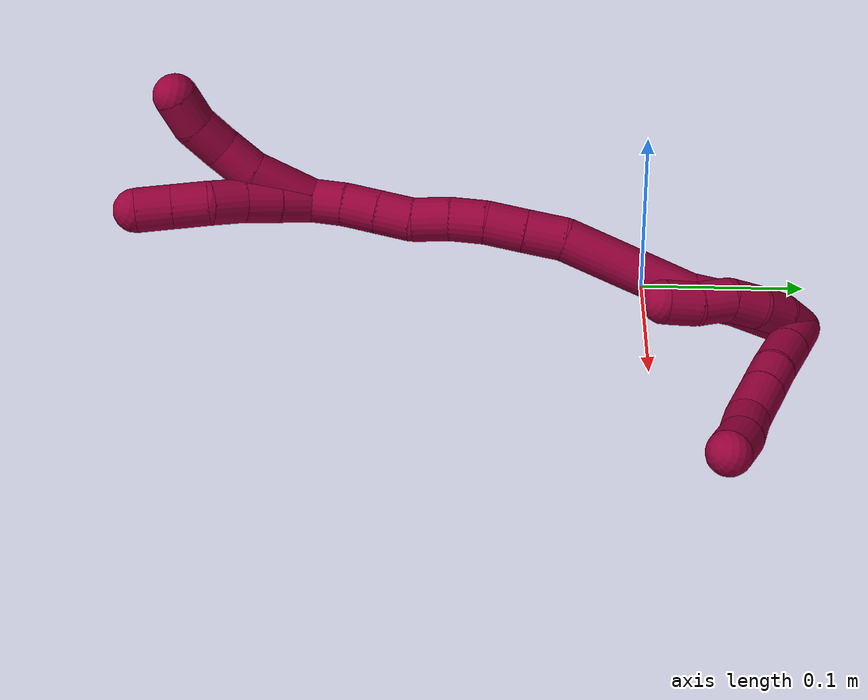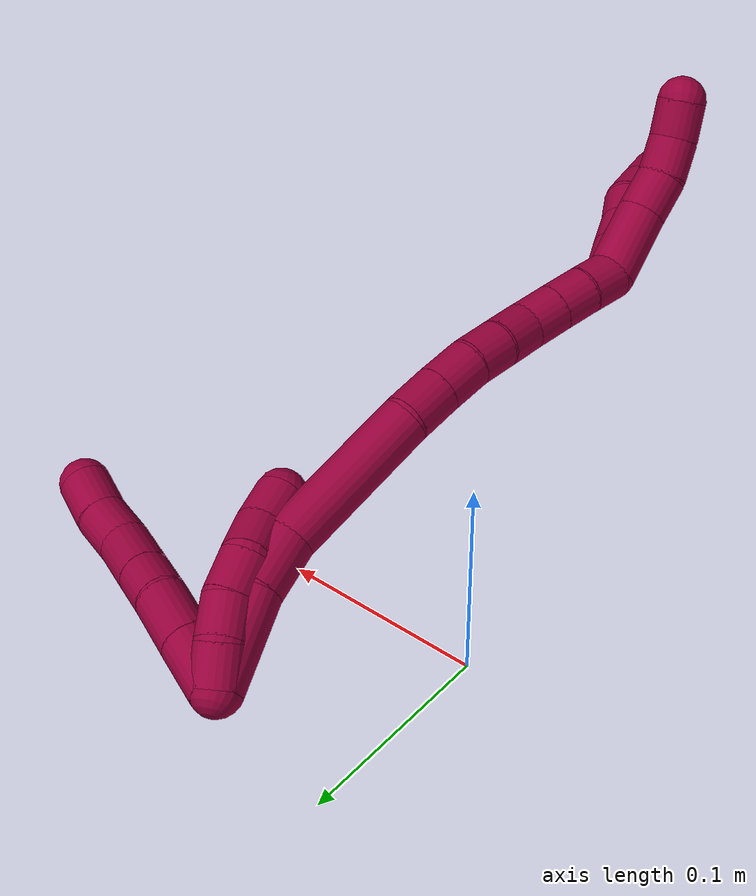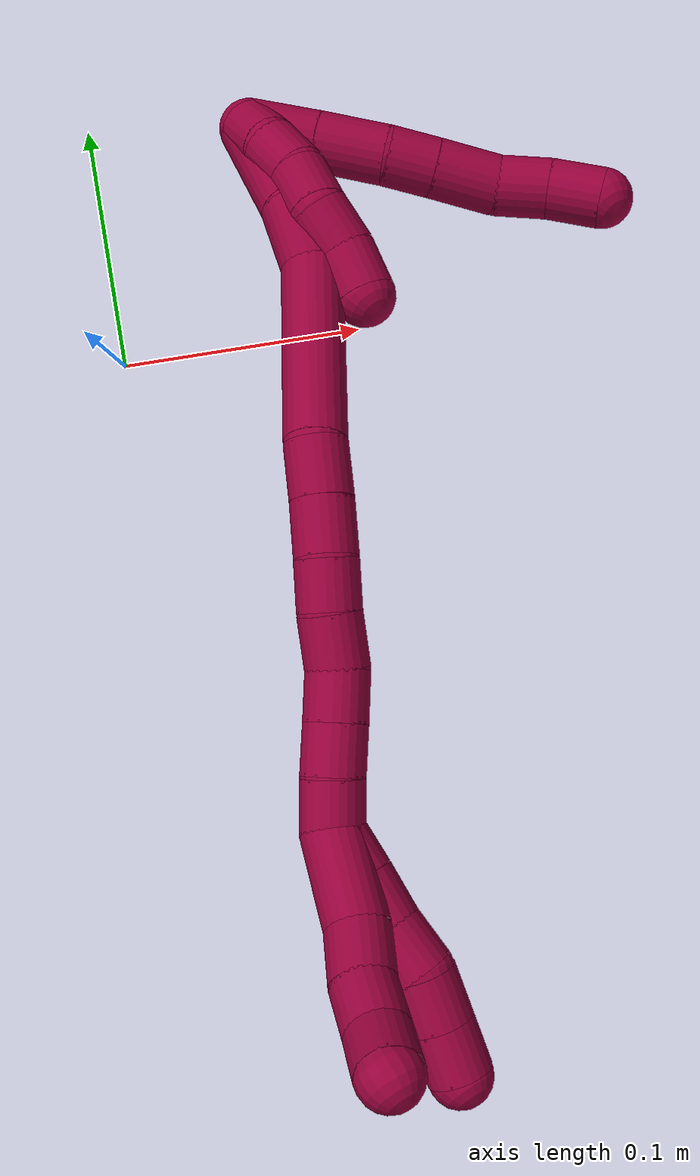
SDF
<sdf version="1.7">
 <world name="default">
  <model name="8">
   <static>0</static>
   <link name="8">
    <collision name="collision-cylinder-e_1_2_8">
     <pose>0.010166 0.003099 0.010073 -0.298489 0.767404 -0.121257</pose>
     <geometry><cylinder><radius>0.0125</radius><length>0.029287</length></cylinder></geometry>
     <surface>
      <friction><ode><mu>1.16</mu><mu2>1.16</mu2><slip1>0</slip1><slip2>0</slip2></ode></friction>
      <contact><ode><kp>1e+06</kp><kd>1</kd><max_vel>0</max_vel><min_depth>0.001</min_depth></ode></contact>
     </surface>
    </collision>
    <visual name="visual-cylinder-e_1_2_8">
     <pose>0.010166 0.003099 0.010073 -0.298489 0.767404 -0.121257</pose>
     <geometry><cylinder><radius>0.0125</radius><length>0.029287</length></cylinder></geometry>
     <material><ambient>0.584314 0 0.227451 1</ambient></material>
    </visual>
    <collision name="collision-cylinder-e_2_8_9">
     <pose>0.03052 0.008907 0.0302 -0.263123 0.774491 -0.10783</pose>
     <geometry><cylinder><radius>0.0125</radius><length>0.029134</length></cylinder></geometry>
     <surface>
      <friction><ode><mu>1.16</mu><mu2>1.16</mu2><slip1>0</slip1><slip2>0</slip2></ode></friction>
      <contact><ode><kp>1e+06</kp><kd>1</kd><max_vel>0</max_vel><min_depth>0.001</min_depth></ode></contact>
     </surface>
    </collision>
    <visual name="visual-cylinder-e_2_8_9">
     <pose>0.03052 0.008907 0.0302 -0.263123 0.774491 -0.10783</pose>
     <geometry><cylinder><radius>0.0125</radius><length>0.029134</length></cylinder></geometry>
     <material><ambient>0.584314 0 0.227451 1</ambient></material>
    </visual>
    <collision name="collision-cylinder-e_3_9_10">
     <pose>0.048512 0.012245 0.046596 -0.099097 0.886018 -0.047048</pose>
     <geometry><cylinder><radius>0.0125</radius><length>0.020152</length></cylinder></geometry>
     <surface>
      <friction><ode><mu>1.16</mu><mu2>1.16</mu2><slip1>0</slip1><slip2>0</slip2></ode></friction>
      <contact><ode><kp>1e+06</kp><kd>1</kd><max_vel>0</max_vel><min_depth>0.001</min_depth></ode></contact>
     </surface>
    </collision>
    <visual name="visual-cylinder-e_3_9_10">
     <pose>0.048512 0.012245 0.046596 -0.099097 0.886018 -0.047048</pose>
     <geometry><cylinder><radius>0.0125</radius><length>0.020152</length></cylinder></geometry>
     <material><ambient>0.584314 0 0.227451 1</ambient></material>
    </visual>
    <collision name="collision-cylinder-e_4_10_11">
     <pose>0.066922 0.013454 0.061465 -0.067652 0.892398 -0.032373</pose>
     <geometry><cylinder><radius>0.0125</radius><length>0.027241</length></cylinder></geometry>
     <surface>
      <friction><ode><mu>1.16</mu><mu2>1.16</mu2><slip1>0</slip1><slip2>0</slip2></ode></friction>
      <contact><ode><kp>1e+06</kp><kd>1</kd><max_vel>0</max_vel><min_depth>0.001</min_depth></ode></contact>
     </surface>
    </collision>
    <visual name="visual-cylinder-e_4_10_11">
     <pose>0.066922 0.013454 0.061465 -0.067652 0.892398 -0.032373</pose>
     <geometry><cylinder><radius>0.0125</radius><length>0.027241</length></cylinder></geometry>
     <material><ambient>0.584314 0 0.227451 1</ambient></material>
    </visual>
    <collision name="collision-cylinder-e_5_11_12">
     <pose>0.085537 0.017251 0.076722 -0.446267 0.821025 -0.196884</pose>
     <geometry><cylinder><radius>0.0125</radius><length>0.021892</length></cylinder></geometry>
     <surface>
      <friction><ode><mu>1.16</mu><mu2>1.16</mu2><slip1>0</slip1><slip2>0</slip2></ode></friction>
      <contact><ode><kp>1e+06</kp><kd>1</kd><max_vel>0</max_vel><min_depth>0.001</min_depth></ode></contact>
     </surface>
    </collision>
    <visual name="visual-cylinder-e_5_11_12">
     <pose>0.085537 0.017251 0.076722 -0.446267 0.821025 -0.196884</pose>
     <geometry><cylinder><radius>0.0125</radius><length>0.021892</length></cylinder></geometry>
     <material><ambient>0.584314 0 0.227451 1</ambient></material>
    </visual>
    <collision name="collision-cylinder-e_6_12_6">
     <pose>0.100495 0.023462 0.091639 -0.350289 0.672847 -0.123613</pose>
     <geometry><cylinder><radius>0.0125</radius><length>0.022294</length></cylinder></geometry>
     <surface>
      <friction><ode><mu>1.16</mu><mu2>1.16</mu2><slip1>0</slip1><slip2>0</slip2></ode></friction>
      <contact><ode><kp>1e+06</kp><kd>1</kd><max_vel>0</max_vel><min_depth>0.001</min_depth></ode></contact>
     </surface>
    </collision>
    <visual name="visual-cylinder-e_6_12_6">
     <pose>0.100495 0.023462 0.091639 -0.350289 0.672847 -0.123613</pose>
     <geometry><cylinder><radius>0.0125</radius><length>0.022294</length></cylinder></geometry>
     <material><ambient>0.584314 0 0.227451 1</ambient></material>
    </visual>
    <collision name="collision-cylinder-e_1_2_13">
     <pose>-0.001021 0.002817 0.009541 -0.287116 -0.10229 0.014799</pose>
     <geometry><cylinder><radius>0.0125</radius><length>0.02</length></cylinder></geometry>
     <surface>
      <friction><ode><mu>1.16</mu><mu2>1.16</mu2><slip1>0</slip1><slip2>0</slip2></ode></friction>
      <contact><ode><kp>1e+06</kp><kd>1</kd><max_vel>0</max_vel><min_depth>0.001</min_depth></ode></contact>
     </surface>
    </collision>
    <visual name="visual-cylinder-e_1_2_13">
     <pose>-0.001021 0.002817 0.009541 -0.287116 -0.10229 0.014799</pose>
     <geometry><cylinder><radius>0.0125</radius><length>0.02</length></cylinder></geometry>
     <material><ambient>0.584314 0 0.227451 1</ambient></material>
    </visual>
    <collision name="collision-cylinder-e_2_13_14">
     <pose>-0.001607 0.006457 0.029038 -0.082498 0.043563 -0.001798</pose>
     <geometry><cylinder><radius>0.0125</radius><length>0.02</length></cylinder></geometry>
     <surface>
      <friction><ode><mu>1.16</mu><mu2>1.16</mu2><slip1>0</slip1><slip2>0</slip2></ode></friction>
      <contact><ode><kp>1e+06</kp><kd>1</kd><max_vel>0</max_vel><min_depth>0.001</min_depth></ode></contact>
     </surface>
    </collision>
    <visual name="visual-cylinder-e_2_13_14">
     <pose>-0.001607 0.006457 0.029038 -0.082498 0.043563 -0.001798</pose>
     <geometry><cylinder><radius>0.0125</radius><length>0.02</length></cylinder></geometry>
     <material><ambient>0.584314 0 0.227451 1</ambient></material>
    </visual>
    <collision name="collision-cylinder-e_3_14_15">
     <pose>-0.001828 0.006019 0.048892 0.126795 -0.065727 -0.004174</pose>
     <geometry><cylinder><radius>0.0125</radius><length>0.02</length></cylinder></geometry>
     <surface>
      <friction><ode><mu>1.16</mu><mu2>1.16</mu2><slip1>0</slip1><slip2>0</slip2></ode></friction>
      <contact><ode><kp>1e+06</kp><kd>1</kd><max_vel>0</max_vel><min_depth>0.001</min_depth></ode></contact>
     </surface>
    </collision>
    <visual name="visual-cylinder-e_3_14_15">
     <pose>-0.001828 0.006019 0.048892 0.126795 -0.065727 -0.004174</pose>
     <geometry><cylinder><radius>0.0125</radius><length>0.02</length></cylinder></geometry>
     <material><ambient>0.584314 0 0.227451 1</ambient></material>
    </visual>
    <collision name="collision-cylinder-e_4_15_16">
     <pose>-0.000485 0.001434 0.068008 0.345996 0.201297 0.035291</pose>
     <geometry><cylinder><radius>0.0125</radius><length>0.02</length></cylinder></geometry>
     <surface>
      <friction><ode><mu>1.16</mu><mu2>1.16</mu2><slip1>0</slip1><slip2>0</slip2></ode></friction>
      <contact><ode><kp>1e+06</kp><kd>1</kd><max_vel>0</max_vel><min_depth>0.001</min_depth></ode></contact>
     </surface>
    </collision>
    <visual name="visual-cylinder-e_4_15_16">
     <pose>-0.000485 0.001434 0.068008 0.345996 0.201297 0.035291</pose>
     <geometry><cylinder><radius>0.0125</radius><length>0.02</length></cylinder></geometry>
     <material><ambient>0.584314 0 0.227451 1</ambient></material>
    </visual>
    <collision name="collision-cylinder-e_5_16_5">
     <pose>0.001514 -0.005095 0.086698 0.326355 2.6e-05 4e-06</pose>
     <geometry><cylinder><radius>0.0125</radius><length>0.02</length></cylinder></geometry>
     <surface>
      <friction><ode><mu>1.16</mu><mu2>1.16</mu2><slip1>0</slip1><slip2>0</slip2></ode></friction>
      <contact><ode><kp>1e+06</kp><kd>1</kd><max_vel>0</max_vel><min_depth>0.001</min_depth></ode></contact>
     </surface>
    </collision>
    <visual name="visual-cylinder-e_5_16_5">
     <pose>0.001514 -0.005095 0.086698 0.326355 2.6e-05 4e-06</pose>
     <geometry><cylinder><radius>0.0125</radius><length>0.02</length></cylinder></geometry>
     <material><ambient>0.584314 0 0.227451 1</ambient></material>
    </visual>
    <collision name="collision-cylinder-e_1_2_17">
     <pose>-0.002919 -0.001182 0.023207 0.050875 -0.124949 -0.003183</pose>
     <geometry><cylinder><radius>0.0125</radius><length>0.04684</length></cylinder></geometry>
     <surface>
      <friction><ode><mu>1.16</mu><mu2>1.16</mu2><slip1>0</slip1><slip2>0</slip2></ode></friction>
      <contact><ode><kp>1e+06</kp><kd>1</kd><max_vel>0</max_vel><min_depth>0.001</min_depth></ode></contact>
     </surface>
    </collision>
    <visual name="visual-cylinder-e_1_2_17">
     <pose>-0.002919 -0.001182 0.023207 0.050875 -0.124949 -0.003183</pose>
     <geometry><cylinder><radius>0.0125</radius><length>0.04684</length></cylinder></geometry>
     <material><ambient>0.584314 0 0.227451 1</ambient></material>
    </visual>
    <collision name="collision-cylinder-e_2_17_18">
     <pose>-0.007723 -0.00627 0.060375 0.272864 -0.129311 -0.017777</pose>
     <geometry><cylinder><radius>0.0125</radius><length>0.029237</length></cylinder></geometry>
     <surface>
      <friction><ode><mu>1.16</mu><mu2>1.16</mu2><slip1>0</slip1><slip2>0</slip2></ode></friction>
      <contact><ode><kp>1e+06</kp><kd>1</kd><max_vel>0</max_vel><min_depth>0.001</min_depth></ode></contact>
     </surface>
    </collision>
    <visual name="visual-cylinder-e_2_17_18">
     <pose>-0.007723 -0.00627 0.060375 0.272864 -0.129311 -0.017777</pose>
     <geometry><cylinder><radius>0.0125</radius><length>0.029237</length></cylinder></geometry>
     <material><ambient>0.584314 0 0.227451 1</ambient></material>
    </visual>
    <collision name="collision-cylinder-e_3_18_19">
     <pose>-0.02513 -0.021868 0.107618 0.337794 -0.414526 -0.071685</pose>
     <geometry><cylinder><radius>0.0125</radius><length>0.077081</length></cylinder></geometry>
     <surface>
      <friction><ode><mu>1.16</mu><mu2>1.16</mu2><slip1>0</slip1><slip2>0</slip2></ode></friction>
      <contact><ode><kp>1e+06</kp><kd>1</kd><max_vel>0</max_vel><min_depth>0.001</min_depth></ode></contact>
     </surface>
    </collision>
    <visual name="visual-cylinder-e_3_18_19">
     <pose>-0.02513 -0.021868 0.107618 0.337794 -0.414526 -0.071685</pose>
     <geometry><cylinder><radius>0.0125</radius><length>0.077081</length></cylinder></geometry>
     <material><ambient>0.584314 0 0.227451 1</ambient></material>
    </visual>
    <collision name="collision-cylinder-e_4_19_20">
     <pose>-0.043489 -0.038683 0.150728 0.480669 -0.250569 -0.061711</pose>
     <geometry><cylinder><radius>0.0125</radius><length>0.022881</length></cylinder></geometry>
     <surface>
      <friction><ode><mu>1.16</mu><mu2>1.16</mu2><slip1>0</slip1><slip2>0</slip2></ode></friction>
      <contact><ode><kp>1e+06</kp><kd>1</kd><max_vel>0</max_vel><min_depth>0.001</min_depth></ode></contact>
     </surface>
    </collision>
    <visual name="visual-cylinder-e_4_19_20">
     <pose>-0.043489 -0.038683 0.150728 0.480669 -0.250569 -0.061711</pose>
     <geometry><cylinder><radius>0.0125</radius><length>0.022881</length></cylinder></geometry>
     <material><ambient>0.584314 0 0.227451 1</ambient></material>
    </visual>
    <collision name="collision-cylinder-e_5_20_21">
     <pose>-0.049365 -0.049004 0.169993 0.503283 -0.274911 -0.071096</pose>
     <geometry><cylinder><radius>0.0125</radius><length>0.022389</length></cylinder></geometry>
     <surface>
      <friction><ode><mu>1.16</mu><mu2>1.16</mu2><slip1>0</slip1><slip2>0</slip2></ode></friction>
      <contact><ode><kp>1e+06</kp><kd>1</kd><max_vel>0</max_vel><min_depth>0.001</min_depth></ode></contact>
     </surface>
    </collision>
    <visual name="visual-cylinder-e_5_20_21">
     <pose>-0.049365 -0.049004 0.169993 0.503283 -0.274911 -0.071096</pose>
     <geometry><cylinder><radius>0.0125</radius><length>0.022389</length></cylinder></geometry>
     <material><ambient>0.584314 0 0.227451 1</ambient></material>
    </visual>
    <collision name="collision-cylinder-e_6_21_22">
     <pose>-0.054587 -0.060065 0.187343 0.637933 -0.218162 -0.072302</pose>
     <geometry><cylinder><radius>0.0125</radius><length>0.020176</length></cylinder></geometry>
     <surface>
      <friction><ode><mu>1.16</mu><mu2>1.16</mu2><slip1>0</slip1><slip2>0</slip2></ode></friction>
      <contact><ode><kp>1e+06</kp><kd>1</kd><max_vel>0</max_vel><min_depth>0.001</min_depth></ode></contact>
     </surface>
    </collision>
    <visual name="visual-cylinder-e_6_21_22">
     <pose>-0.054587 -0.060065 0.187343 0.637933 -0.218162 -0.072302</pose>
     <geometry><cylinder><radius>0.0125</radius><length>0.020176</length></cylinder></geometry>
     <material><ambient>0.584314 0 0.227451 1</ambient></material>
    </visual>
    <collision name="collision-cylinder-e_7_22_23">
     <pose>-0.057832 -0.07255 0.203537 0.674261 -0.099842 -0.035021</pose>
     <geometry><cylinder><radius>0.0125</radius><length>0.021311</length></cylinder></geometry>
     <surface>
      <friction><ode><mu>1.16</mu><mu2>1.16</mu2><slip1>0</slip1><slip2>0</slip2></ode></friction>
      <contact><ode><kp>1e+06</kp><kd>1</kd><max_vel>0</max_vel><min_depth>0.001</min_depth></ode></contact>
     </surface>
    </collision>
    <visual name="visual-cylinder-e_7_22_23">
     <pose>-0.057832 -0.07255 0.203537 0.674261 -0.099842 -0.035021</pose>
     <geometry><cylinder><radius>0.0125</radius><length>0.021311</length></cylinder></geometry>
     <material><ambient>0.584314 0 0.227451 1</ambient></material>
    </visual>
    <collision name="collision-cylinder-e_8_23_24">
     <pose>-0.062309 -0.084645 0.219515 0.618475 -0.346917 -0.111844</pose>
     <geometry><cylinder><radius>0.0125</radius><length>0.020085</length></cylinder></geometry>
     <surface>
      <friction><ode><mu>1.16</mu><mu2>1.16</mu2><slip1>0</slip1><slip2>0</slip2></ode></friction>
      <contact><ode><kp>1e+06</kp><kd>1</kd><max_vel>0</max_vel><min_depth>0.001</min_depth></ode></contact>
     </surface>
    </collision>
    <visual name="visual-cylinder-e_8_23_24">
     <pose>-0.062309 -0.084645 0.219515 0.618475 -0.346917 -0.111844</pose>
     <geometry><cylinder><radius>0.0125</radius><length>0.020085</length></cylinder></geometry>
     <material><ambient>0.584314 0 0.227451 1</ambient></material>
    </visual>
    <collision name="collision-cylinder-e_9_24_25">
     <pose>-0.069202 -0.095624 0.234801 0.627237 -0.355257 -0.116314</pose>
     <geometry><cylinder><radius>0.0125</radius><length>0.02</length></cylinder></geometry>
     <surface>
      <friction><ode><mu>1.16</mu><mu2>1.16</mu2><slip1>0</slip1><slip2>0</slip2></ode></friction>
      <contact><ode><kp>1e+06</kp><kd>1</kd><max_vel>0</max_vel><min_depth>0.001</min_depth></ode></contact>
     </surface>
    </collision>
    <visual name="visual-cylinder-e_9_24_25">
     <pose>-0.069202 -0.095624 0.234801 0.627237 -0.355257 -0.116314</pose>
     <geometry><cylinder><radius>0.0125</radius><length>0.02</length></cylinder></geometry>
     <material><ambient>0.584314 0 0.227451 1</ambient></material>
    </visual>
    <collision name="collision-cylinder-e_10_25_1">
     <pose>-0.075344 -0.107142 0.249922 0.674067 -0.269627 -0.094983</pose>
     <geometry><cylinder><radius>0.0125</radius><length>0.02</length></cylinder></geometry>
     <surface>
      <friction><ode><mu>1.16</mu><mu2>1.16</mu2><slip1>0</slip1><slip2>0</slip2></ode></friction>
      <contact><ode><kp>1e+06</kp><kd>1</kd><max_vel>0</max_vel><min_depth>0.001</min_depth></ode></contact>
     </surface>
    </collision>
    <visual name="visual-cylinder-e_10_25_1">
     <pose>-0.075344 -0.107142 0.249922 0.674067 -0.269627 -0.094983</pose>
     <geometry><cylinder><radius>0.0125</radius><length>0.02</length></cylinder></geometry>
     <material><ambient>0.584314 0 0.227451 1</ambient></material>
    </visual>
    <collision name="collision-cylinder-e_1_1_26">
     <pose>-0.083082 -0.114859 0.27564 0.093195 -0.270986 -0.012714</pose>
     <geometry><cylinder><radius>0.0125</radius><length>0.037916</length></cylinder></geometry>
     <surface>
      <friction><ode><mu>1.16</mu><mu2>1.16</mu2><slip1>0</slip1><slip2>0</slip2></ode></friction>
      <contact><ode><kp>1e+06</kp><kd>1</kd><max_vel>0</max_vel><min_depth>0.001</min_depth></ode></contact>
     </surface>
    </collision>
    <visual name="visual-cylinder-e_1_1_26">
     <pose>-0.083082 -0.114859 0.27564 0.093195 -0.270986 -0.012714</pose>
     <geometry><cylinder><radius>0.0125</radius><length>0.037916</length></cylinder></geometry>
     <material><ambient>0.584314 0 0.227451 1</ambient></material>
    </visual>
    <collision name="collision-cylinder-e_2_26_27">
     <pose>-0.093105 -0.116117 0.303442 -0.045888 -0.474792 0.011105</pose>
     <geometry><cylinder><radius>0.0125</radius><length>0.021645</length></cylinder></geometry>
     <surface>
      <friction><ode><mu>1.16</mu><mu2>1.16</mu2><slip1>0</slip1><slip2>0</slip2></ode></friction>
      <contact><ode><kp>1e+06</kp><kd>1</kd><max_vel>0</max_vel><min_depth>0.001</min_depth></ode></contact>
     </surface>
    </collision>
    <visual name="visual-cylinder-e_2_26_27">
     <pose>-0.093105 -0.116117 0.303442 -0.045888 -0.474792 0.011105</pose>
     <geometry><cylinder><radius>0.0125</radius><length>0.021645</length></cylinder></geometry>
     <material><ambient>0.584314 0 0.227451 1</ambient></material>
    </visual>
    <collision name="collision-cylinder-e_3_27_28">
     <pose>-0.101542 -0.113494 0.322404 -0.229242 -0.348731 0.040554</pose>
     <geometry><cylinder><radius>0.0125</radius><length>0.020424</length></cylinder></geometry>
     <surface>
      <friction><ode><mu>1.16</mu><mu2>1.16</mu2><slip1>0</slip1><slip2>0</slip2></ode></friction>
      <contact><ode><kp>1e+06</kp><kd>1</kd><max_vel>0</max_vel><min_depth>0.001</min_depth></ode></contact>
     </surface>
    </collision>
    <visual name="visual-cylinder-e_3_27_28">
     <pose>-0.101542 -0.113494 0.322404 -0.229242 -0.348731 0.040554</pose>
     <geometry><cylinder><radius>0.0125</radius><length>0.020424</length></cylinder></geometry>
     <material><ambient>0.584314 0 0.227451 1</ambient></material>
    </visual>
    <collision name="collision-cylinder-e_4_28_4">
     <pose>-0.109302 -0.106825 0.339609 -0.518938 -0.440887 0.118828</pose>
     <geometry><cylinder><radius>0.0125</radius><length>0.020015</length></cylinder></geometry>
     <surface>
      <friction><ode><mu>1.16</mu><mu2>1.16</mu2><slip1>0</slip1><slip2>0</slip2></ode></friction>
      <contact><ode><kp>1e+06</kp><kd>1</kd><max_vel>0</max_vel><min_depth>0.001</min_depth></ode></contact>
     </surface>
    </collision>
    <visual name="visual-cylinder-e_4_28_4">
     <pose>-0.109302 -0.106825 0.339609 -0.518938 -0.440887 0.118828</pose>
     <geometry><cylinder><radius>0.0125</radius><length>0.020015</length></cylinder></geometry>
     <material><ambient>0.584314 0 0.227451 1</ambient></material>
    </visual>
    <collision name="collision-cylinder-e_1_1_29">
     <pose>-0.076559 -0.115769 0.266997 0.266997 0.14536 0.019555</pose>
     <geometry><cylinder><radius>0.0125</radius><length>0.02</length></cylinder></geometry>
     <surface>
      <friction><ode><mu>1.16</mu><mu2>1.16</mu2><slip1>0</slip1><slip2>0</slip2></ode></friction>
      <contact><ode><kp>1e+06</kp><kd>1</kd><max_vel>0</max_vel><min_depth>0.001</min_depth></ode></contact>
     </surface>
    </collision>
    <visual name="visual-cylinder-e_1_1_29">
     <pose>-0.076559 -0.115769 0.266997 0.266997 0.14536 0.019555</pose>
     <geometry><cylinder><radius>0.0125</radius><length>0.02</length></cylinder></geometry>
     <material><ambient>0.584314 0 0.227451 1</ambient></material>
    </visual>
    <collision name="collision-cylinder-e_2_29_30">
     <pose>-0.073926 -0.121123 0.286084 0.279957 0.118683 0.016742</pose>
     <geometry><cylinder><radius>0.0125</radius><length>0.02</length></cylinder></geometry>
     <surface>
      <friction><ode><mu>1.16</mu><mu2>1.16</mu2><slip1>0</slip1><slip2>0</slip2></ode></friction>
      <contact><ode><kp>1e+06</kp><kd>1</kd><max_vel>0</max_vel><min_depth>0.001</min_depth></ode></contact>
     </surface>
    </collision>
    <visual name="visual-cylinder-e_2_29_30">
     <pose>-0.073926 -0.121123 0.286084 0.279957 0.118683 0.016742</pose>
     <geometry><cylinder><radius>0.0125</radius><length>0.02</length></cylinder></geometry>
     <material><ambient>0.584314 0 0.227451 1</ambient></material>
    </visual>
    <collision name="collision-cylinder-e_3_30_31">
     <pose>-0.070489 -0.126188 0.305089 0.240561 0.227335 0.027594</pose>
     <geometry><cylinder><radius>0.0125</radius><length>0.02</length></cylinder></geometry>
     <surface>
      <friction><ode><mu>1.16</mu><mu2>1.16</mu2><slip1>0</slip1><slip2>0</slip2></ode></friction>
      <contact><ode><kp>1e+06</kp><kd>1</kd><max_vel>0</max_vel><min_depth>0.001</min_depth></ode></contact>
     </surface>
    </collision>
    <visual name="visual-cylinder-e_3_30_31">
     <pose>-0.070489 -0.126188 0.305089 0.240561 0.227335 0.027594</pose>
     <geometry><cylinder><radius>0.0125</radius><length>0.02</length></cylinder></geometry>
     <material><ambient>0.584314 0 0.227451 1</ambient></material>
    </visual>
    <collision name="collision-cylinder-e_4_31_32">
     <pose>-0.06754 -0.133692 0.323075 0.546296 0.069556 0.019493</pose>
     <geometry><cylinder><radius>0.0125</radius><length>0.02</length></cylinder></geometry>
     <surface>
      <friction><ode><mu>1.16</mu><mu2>1.16</mu2><slip1>0</slip1><slip2>0</slip2></ode></friction>
      <contact><ode><kp>1e+06</kp><kd>1</kd><max_vel>0</max_vel><min_depth>0.001</min_depth></ode></contact>
     </surface>
    </collision>
    <visual name="visual-cylinder-e_4_31_32">
     <pose>-0.06754 -0.133692 0.323075 0.546296 0.069556 0.019493</pose>
     <geometry><cylinder><radius>0.0125</radius><length>0.02</length></cylinder></geometry>
     <material><ambient>0.584314 0 0.227451 1</ambient></material>
    </visual>
    <collision name="collision-cylinder-e_5_32_3">
     <pose>-0.066161 -0.144065 0.340119 0.547086 0.068451 0.019213</pose>
     <geometry><cylinder><radius>0.0125</radius><length>0.02</length></cylinder></geometry>
     <surface>
      <friction><ode><mu>1.16</mu><mu2>1.16</mu2><slip1>0</slip1><slip2>0</slip2></ode></friction>
      <contact><ode><kp>1e+06</kp><kd>1</kd><max_vel>0</max_vel><min_depth>0.001</min_depth></ode></contact>
     </surface>
    </collision>
    <visual name="visual-cylinder-e_5_32_3">
     <pose>-0.066161 -0.144065 0.340119 0.547086 0.068451 0.019213</pose>
     <geometry><cylinder><radius>0.0125</radius><length>0.02</length></cylinder></geometry>
     <material><ambient>0.584314 0 0.227451 1</ambient></material>
    </visual>
    <collision name="collision-sphere-3">
     <pose>-0.065477 -0.149255 0.34864 0 -0 0</pose>
     <geometry><sphere><radius>0.0125</radius></sphere></geometry>
     <surface>
      <friction><ode><mu>1.16</mu><mu2>1.16</mu2><slip1>0</slip1><slip2>0</slip2></ode></friction>
      <contact><ode><kp>1e+06</kp><kd>1</kd><max_vel>0</max_vel><min_depth>0.001</min_depth></ode></contact>
     </surface>
    </collision>
    <visual name="visual-sphere-3">
     <pose>-0.065477 -0.149255 0.34864 0 -0 0</pose>
     <geometry><sphere><radius>0.0125</radius></sphere></geometry>
     <material><ambient>0.584314 0 0.227451 1</ambient></material>
    </visual>
    <collision name="collision-sphere-32">
     <pose>-0.066845 -0.138875 0.331599 0 -0 0</pose>
     <geometry><sphere><radius>0.0125</radius></sphere></geometry>
     <surface>
      <friction><ode><mu>1.16</mu><mu2>1.16</mu2><slip1>0</slip1><slip2>0</slip2></ode></friction>
      <contact><ode><kp>1e+06</kp><kd>1</kd><max_vel>0</max_vel><min_depth>0.001</min_depth></ode></contact>
     </surface>
    </collision>
    <visual name="visual-sphere-32">
     <pose>-0.066845 -0.138875 0.331599 0 -0 0</pose>
     <geometry><sphere><radius>0.0125</radius></sphere></geometry>
     <material><ambient>0.584314 0 0.227451 1</ambient></material>
    </visual>
    <collision name="collision-sphere-31">
     <pose>-0.068235 -0.12851 0.314551 0 -0 0</pose>
     <geometry><sphere><radius>0.0125</radius></sphere></geometry>
     <surface>
      <friction><ode><mu>1.16</mu><mu2>1.16</mu2><slip1>0</slip1><slip2>0</slip2></ode></friction>
      <contact><ode><kp>1e+06</kp><kd>1</kd><max_vel>0</max_vel><min_depth>0.001</min_depth></ode></contact>
     </surface>
    </collision>
    <visual name="visual-sphere-31">
     <pose>-0.068235 -0.12851 0.314551 0 -0 0</pose>
     <geometry><sphere><radius>0.0125</radius></sphere></geometry>
     <material><ambient>0.584314 0 0.227451 1</ambient></material>
    </visual>
    <collision name="collision-sphere-30">
     <pose>-0.072742 -0.123867 0.295627 0 -0 0</pose>
     <geometry><sphere><radius>0.0125</radius></sphere></geometry>
     <surface>
      <friction><ode><mu>1.16</mu><mu2>1.16</mu2><slip1>0</slip1><slip2>0</slip2></ode></friction>
      <contact><ode><kp>1e+06</kp><kd>1</kd><max_vel>0</max_vel><min_depth>0.001</min_depth></ode></contact>
     </surface>
    </collision>
    <visual name="visual-sphere-30">
     <pose>-0.072742 -0.123867 0.295627 0 -0 0</pose>
     <geometry><sphere><radius>0.0125</radius></sphere></geometry>
     <material><ambient>0.584314 0 0.227451 1</ambient></material>
    </visual>
    <collision name="collision-sphere-29">
     <pose>-0.075111 -0.11838 0.276541 0 -0 0</pose>
     <geometry><sphere><radius>0.0125</radius></sphere></geometry>
     <surface>
      <friction><ode><mu>1.16</mu><mu2>1.16</mu2><slip1>0</slip1><slip2>0</slip2></ode></friction>
      <contact><ode><kp>1e+06</kp><kd>1</kd><max_vel>0</max_vel><min_depth>0.001</min_depth></ode></contact>
     </surface>
    </collision>
    <visual name="visual-sphere-29">
     <pose>-0.075111 -0.11838 0.276541 0 -0 0</pose>
     <geometry><sphere><radius>0.0125</radius></sphere></geometry>
     <material><ambient>0.584314 0 0.227451 1</ambient></material>
    </visual>
    <collision name="collision-sphere-4">
     <pose>-0.113572 -0.102336 0.347468 0 -0 0</pose>
     <geometry><sphere><radius>0.0125</radius></sphere></geometry>
     <surface>
      <friction><ode><mu>1.16</mu><mu2>1.16</mu2><slip1>0</slip1><slip2>0</slip2></ode></friction>
      <contact><ode><kp>1e+06</kp><kd>1</kd><max_vel>0</max_vel><min_depth>0.001</min_depth></ode></contact>
     </surface>
    </collision>
    <visual name="visual-sphere-4">
     <pose>-0.113572 -0.102336 0.347468 0 -0 0</pose>
     <geometry><sphere><radius>0.0125</radius></sphere></geometry>
     <material><ambient>0.584314 0 0.227451 1</ambient></material>
    </visual>
    <collision name="collision-sphere-28">
     <pose>-0.105031 -0.111313 0.33175 0 -0 0</pose>
     <geometry><sphere><radius>0.0125</radius></sphere></geometry>
     <surface>
      <friction><ode><mu>1.16</mu><mu2>1.16</mu2><slip1>0</slip1><slip2>0</slip2></ode></friction>
      <contact><ode><kp>1e+06</kp><kd>1</kd><max_vel>0</max_vel><min_depth>0.001</min_depth></ode></contact>
     </surface>
    </collision>
    <visual name="visual-sphere-28">
     <pose>-0.105031 -0.111313 0.33175 0 -0 0</pose>
     <geometry><sphere><radius>0.0125</radius></sphere></geometry>
     <material><ambient>0.584314 0 0.227451 1</ambient></material>
    </visual>
    <collision name="collision-sphere-27">
     <pose>-0.098052 -0.115675 0.313057 0 -0 0</pose>
     <geometry><sphere><radius>0.0125</radius></sphere></geometry>
     <surface>
      <friction><ode><mu>1.16</mu><mu2>1.16</mu2><slip1>0</slip1><slip2>0</slip2></ode></friction>
      <contact><ode><kp>1e+06</kp><kd>1</kd><max_vel>0</max_vel><min_depth>0.001</min_depth></ode></contact>
     </surface>
    </collision>
    <visual name="visual-sphere-27">
     <pose>-0.098052 -0.115675 0.313057 0 -0 0</pose>
     <geometry><sphere><radius>0.0125</radius></sphere></geometry>
     <material><ambient>0.584314 0 0.227451 1</ambient></material>
    </visual>
    <collision name="collision-sphere-26">
     <pose>-0.088157 -0.116558 0.293827 0 -0 0</pose>
     <geometry><sphere><radius>0.0125</radius></sphere></geometry>
     <surface>
      <friction><ode><mu>1.16</mu><mu2>1.16</mu2><slip1>0</slip1><slip2>0</slip2></ode></friction>
      <contact><ode><kp>1e+06</kp><kd>1</kd><max_vel>0</max_vel><min_depth>0.001</min_depth></ode></contact>
     </surface>
    </collision>
    <visual name="visual-sphere-26">
     <pose>-0.088157 -0.116558 0.293827 0 -0 0</pose>
     <geometry><sphere><radius>0.0125</radius></sphere></geometry>
     <material><ambient>0.584314 0 0.227451 1</ambient></material>
    </visual>
    <collision name="collision-sphere-1">
     <pose>-0.078007 -0.113159 0.257453 0 -0 0</pose>
     <geometry><sphere><radius>0.0125</radius></sphere></geometry>
     <surface>
      <friction><ode><mu>1.16</mu><mu2>1.16</mu2><slip1>0</slip1><slip2>0</slip2></ode></friction>
      <contact><ode><kp>1e+06</kp><kd>1</kd><max_vel>0</max_vel><min_depth>0.001</min_depth></ode></contact>
     </surface>
    </collision>
    <visual name="visual-sphere-1">
     <pose>-0.078007 -0.113159 0.257453 0 -0 0</pose>
     <geometry><sphere><radius>0.0125</radius></sphere></geometry>
     <material><ambient>0.584314 0 0.227451 1</ambient></material>
    </visual>
    <collision name="collision-sphere-25">
     <pose>-0.07268 -0.101126 0.242392 0 -0 0</pose>
     <geometry><sphere><radius>0.0125</radius></sphere></geometry>
     <surface>
      <friction><ode><mu>1.16</mu><mu2>1.16</mu2><slip1>0</slip1><slip2>0</slip2></ode></friction>
      <contact><ode><kp>1e+06</kp><kd>1</kd><max_vel>0</max_vel><min_depth>0.001</min_depth></ode></contact>
     </surface>
    </collision>
    <visual name="visual-sphere-25">
     <pose>-0.07268 -0.101126 0.242392 0 -0 0</pose>
     <geometry><sphere><radius>0.0125</radius></sphere></geometry>
     <material><ambient>0.584314 0 0.227451 1</ambient></material>
    </visual>
    <collision name="collision-sphere-24">
     <pose>-0.065723 -0.090121 0.22721 0 -0 0</pose>
     <geometry><sphere><radius>0.0125</radius></sphere></geometry>
     <surface>
      <friction><ode><mu>1.16</mu><mu2>1.16</mu2><slip1>0</slip1><slip2>0</slip2></ode></friction>
      <contact><ode><kp>1e+06</kp><kd>1</kd><max_vel>0</max_vel><min_depth>0.001</min_depth></ode></contact>
     </surface>
    </collision>
    <visual name="visual-sphere-24">
     <pose>-0.065723 -0.090121 0.22721 0 -0 0</pose>
     <geometry><sphere><radius>0.0125</radius></sphere></geometry>
     <material><ambient>0.584314 0 0.227451 1</ambient></material>
    </visual>
    <collision name="collision-sphere-23">
     <pose>-0.058894 -0.07917 0.21182 0 -0 0</pose>
     <geometry><sphere><radius>0.0125</radius></sphere></geometry>
     <surface>
      <friction><ode><mu>1.16</mu><mu2>1.16</mu2><slip1>0</slip1><slip2>0</slip2></ode></friction>
      <contact><ode><kp>1e+06</kp><kd>1</kd><max_vel>0</max_vel><min_depth>0.001</min_depth></ode></contact>
     </surface>
    </collision>
    <visual name="visual-sphere-23">
     <pose>-0.058894 -0.07917 0.21182 0 -0 0</pose>
     <geometry><sphere><radius>0.0125</radius></sphere></geometry>
     <material><ambient>0.584314 0 0.227451 1</ambient></material>
    </visual>
    <collision name="collision-sphere-22">
     <pose>-0.05677 -0.065931 0.195255 0 -0 0</pose>
     <geometry><sphere><radius>0.0125</radius></sphere></geometry>
     <surface>
      <friction><ode><mu>1.16</mu><mu2>1.16</mu2><slip1>0</slip1><slip2>0</slip2></ode></friction>
      <contact><ode><kp>1e+06</kp><kd>1</kd><max_vel>0</max_vel><min_depth>0.001</min_depth></ode></contact>
     </surface>
    </collision>
    <visual name="visual-sphere-22">
     <pose>-0.05677 -0.065931 0.195255 0 -0 0</pose>
     <geometry><sphere><radius>0.0125</radius></sphere></geometry>
     <material><ambient>0.584314 0 0.227451 1</ambient></material>
    </visual>
    <collision name="collision-sphere-21">
     <pose>-0.052403 -0.0542 0.179431 0 -0 0</pose>
     <geometry><sphere><radius>0.0125</radius></sphere></geometry>
     <surface>
      <friction><ode><mu>1.16</mu><mu2>1.16</mu2><slip1>0</slip1><slip2>0</slip2></ode></friction>
      <contact><ode><kp>1e+06</kp><kd>1</kd><max_vel>0</max_vel><min_depth>0.001</min_depth></ode></contact>
     </surface>
    </collision>
    <visual name="visual-sphere-21">
     <pose>-0.052403 -0.0542 0.179431 0 -0 0</pose>
     <geometry><sphere><radius>0.0125</radius></sphere></geometry>
     <material><ambient>0.584314 0 0.227451 1</ambient></material>
    </visual>
    <collision name="collision-sphere-12">
     <pose>0.093548 0.020471 0.083451 0 -0 0</pose>
     <geometry><sphere><radius>0.0125</radius></sphere></geometry>
     <surface>
      <friction><ode><mu>1.16</mu><mu2>1.16</mu2><slip1>0</slip1><slip2>0</slip2></ode></friction>
      <contact><ode><kp>1e+06</kp><kd>1</kd><max_vel>0</max_vel><min_depth>0.001</min_depth></ode></contact>
     </surface>
    </collision>
    <visual name="visual-sphere-12">
     <pose>0.093548 0.020471 0.083451 0 -0 0</pose>
     <geometry><sphere><radius>0.0125</radius></sphere></geometry>
     <material><ambient>0.584314 0 0.227451 1</ambient></material>
    </visual>
    <collision name="collision-sphere-11">
     <pose>0.077526 0.014032 0.069994 0 -0 0</pose>
     <geometry><sphere><radius>0.0125</radius></sphere></geometry>
     <surface>
      <friction><ode><mu>1.16</mu><mu2>1.16</mu2><slip1>0</slip1><slip2>0</slip2></ode></friction>
      <contact><ode><kp>1e+06</kp><kd>1</kd><max_vel>0</max_vel><min_depth>0.001</min_depth></ode></contact>
     </surface>
    </collision>
    <visual name="visual-sphere-11">
     <pose>0.077526 0.014032 0.069994 0 -0 0</pose>
     <geometry><sphere><radius>0.0125</radius></sphere></geometry>
     <material><ambient>0.584314 0 0.227451 1</ambient></material>
    </visual>
    <collision name="collision-sphere-10">
     <pose>0.056317 0.012876 0.052937 0 -0 0</pose>
     <geometry><sphere><radius>0.0125</radius></sphere></geometry>
     <surface>
      <friction><ode><mu>1.16</mu><mu2>1.16</mu2><slip1>0</slip1><slip2>0</slip2></ode></friction>
      <contact><ode><kp>1e+06</kp><kd>1</kd><max_vel>0</max_vel><min_depth>0.001</min_depth></ode></contact>
     </surface>
    </collision>
    <visual name="visual-sphere-10">
     <pose>0.056317 0.012876 0.052937 0 -0 0</pose>
     <geometry><sphere><radius>0.0125</radius></sphere></geometry>
     <material><ambient>0.584314 0 0.227451 1</ambient></material>
    </visual>
    <collision name="collision-sphere-9">
     <pose>0.040708 0.011615 0.040254 0 -0 0</pose>
     <geometry><sphere><radius>0.0125</radius></sphere></geometry>
     <surface>
      <friction><ode><mu>1.16</mu><mu2>1.16</mu2><slip1>0</slip1><slip2>0</slip2></ode></friction>
      <contact><ode><kp>1e+06</kp><kd>1</kd><max_vel>0</max_vel><min_depth>0.001</min_depth></ode></contact>
     </surface>
    </collision>
    <visual name="visual-sphere-9">
     <pose>0.040708 0.011615 0.040254 0 -0 0</pose>
     <geometry><sphere><radius>0.0125</radius></sphere></geometry>
     <material><ambient>0.584314 0 0.227451 1</ambient></material>
    </visual>
    <collision name="collision-sphere-2">
     <geometry><sphere><radius>0.0125</radius></sphere></geometry>
     <surface>
      <friction><ode><mu>1.16</mu><mu2>1.16</mu2><slip1>0</slip1><slip2>0</slip2></ode></friction>
      <contact><ode><kp>1e+06</kp><kd>1</kd><max_vel>0</max_vel><min_depth>0.001</min_depth></ode></contact>
     </surface>
    </collision>
    <visual name="visual-sphere-2">
     <geometry><sphere><radius>0.0125</radius></sphere></geometry>
     <material><ambient>0.584314 0 0.227451 1</ambient></material>
    </visual>
    <collision name="collision-sphere-19">
     <pose>-0.040652 -0.033558 0.140901 0 -0 0</pose>
     <geometry><sphere><radius>0.0125</radius></sphere></geometry>
     <surface>
      <friction><ode><mu>1.16</mu><mu2>1.16</mu2><slip1>0</slip1><slip2>0</slip2></ode></friction>
      <contact><ode><kp>1e+06</kp><kd>1</kd><max_vel>0</max_vel><min_depth>0.001</min_depth></ode></contact>
     </surface>
    </collision>
    <visual name="visual-sphere-19">
     <pose>-0.040652 -0.033558 0.140901 0 -0 0</pose>
     <geometry><sphere><radius>0.0125</radius></sphere></geometry>
     <material><ambient>0.584314 0 0.227451 1</ambient></material>
    </visual>
    <collision name="collision-sphere-8">
     <pose>0.020333 0.006199 0.020146 0 -0 0</pose>
     <geometry><sphere><radius>0.0125</radius></sphere></geometry>
     <surface>
      <friction><ode><mu>1.16</mu><mu2>1.16</mu2><slip1>0</slip1><slip2>0</slip2></ode></friction>
      <contact><ode><kp>1e+06</kp><kd>1</kd><max_vel>0</max_vel><min_depth>0.001</min_depth></ode></contact>
     </surface>
    </collision>
    <visual name="visual-sphere-8">
     <pose>0.020333 0.006199 0.020146 0 -0 0</pose>
     <geometry><sphere><radius>0.0125</radius></sphere></geometry>
     <material><ambient>0.584314 0 0.227451 1</ambient></material>
    </visual>
    <collision name="collision-sphere-6">
     <pose>0.107442 0.026454 0.099827 0 -0 0</pose>
     <geometry><sphere><radius>0.0125</radius></sphere></geometry>
     <surface>
      <friction><ode><mu>1.16</mu><mu2>1.16</mu2><slip1>0</slip1><slip2>0</slip2></ode></friction>
      <contact><ode><kp>1e+06</kp><kd>1</kd><max_vel>0</max_vel><min_depth>0.001</min_depth></ode></contact>
     </surface>
    </collision>
    <visual name="visual-sphere-6">
     <pose>0.107442 0.026454 0.099827 0 -0 0</pose>
     <geometry><sphere><radius>0.0125</radius></sphere></geometry>
     <material><ambient>0.584314 0 0.227451 1</ambient></material>
    </visual>
    <collision name="collision-sphere-13">
     <pose>-0.002042 0.005634 0.019081 0 -0 0</pose>
     <geometry><sphere><radius>0.0125</radius></sphere></geometry>
     <surface>
      <friction><ode><mu>1.16</mu><mu2>1.16</mu2><slip1>0</slip1><slip2>0</slip2></ode></friction>
      <contact><ode><kp>1e+06</kp><kd>1</kd><max_vel>0</max_vel><min_depth>0.001</min_depth></ode></contact>
     </surface>
    </collision>
    <visual name="visual-sphere-13">
     <pose>-0.002042 0.005634 0.019081 0 -0 0</pose>
     <geometry><sphere><radius>0.0125</radius></sphere></geometry>
     <material><ambient>0.584314 0 0.227451 1</ambient></material>
    </visual>
    <collision name="collision-sphere-14">
     <pose>-0.001171 0.007281 0.038994 0 -0 0</pose>
     <geometry><sphere><radius>0.0125</radius></sphere></geometry>
     <surface>
      <friction><ode><mu>1.16</mu><mu2>1.16</mu2><slip1>0</slip1><slip2>0</slip2></ode></friction>
      <contact><ode><kp>1e+06</kp><kd>1</kd><max_vel>0</max_vel><min_depth>0.001</min_depth></ode></contact>
     </surface>
    </collision>
    <visual name="visual-sphere-14">
     <pose>-0.001171 0.007281 0.038994 0 -0 0</pose>
     <geometry><sphere><radius>0.0125</radius></sphere></geometry>
     <material><ambient>0.584314 0 0.227451 1</ambient></material>
    </visual>
    <collision name="collision-sphere-15">
     <pose>-0.002485 0.004757 0.058791 0 -0 0</pose>
     <geometry><sphere><radius>0.0125</radius></sphere></geometry>
     <surface>
      <friction><ode><mu>1.16</mu><mu2>1.16</mu2><slip1>0</slip1><slip2>0</slip2></ode></friction>
      <contact><ode><kp>1e+06</kp><kd>1</kd><max_vel>0</max_vel><min_depth>0.001</min_depth></ode></contact>
     </surface>
    </collision>
    <visual name="visual-sphere-15">
     <pose>-0.002485 0.004757 0.058791 0 -0 0</pose>
     <geometry><sphere><radius>0.0125</radius></sphere></geometry>
     <material><ambient>0.584314 0 0.227451 1</ambient></material>
    </visual>
    <collision name="collision-sphere-16">
     <pose>0.001514 -0.001889 0.077226 0 -0 0</pose>
     <geometry><sphere><radius>0.0125</radius></sphere></geometry>
     <surface>
      <friction><ode><mu>1.16</mu><mu2>1.16</mu2><slip1>0</slip1><slip2>0</slip2></ode></friction>
      <contact><ode><kp>1e+06</kp><kd>1</kd><max_vel>0</max_vel><min_depth>0.001</min_depth></ode></contact>
     </surface>
    </collision>
    <visual name="visual-sphere-16">
     <pose>0.001514 -0.001889 0.077226 0 -0 0</pose>
     <geometry><sphere><radius>0.0125</radius></sphere></geometry>
     <material><ambient>0.584314 0 0.227451 1</ambient></material>
    </visual>
    <collision name="collision-sphere-5">
     <pose>0.001515 -0.008301 0.09617 0 -0 0</pose>
     <geometry><sphere><radius>0.0125</radius></sphere></geometry>
     <surface>
      <friction><ode><mu>1.16</mu><mu2>1.16</mu2><slip1>0</slip1><slip2>0</slip2></ode></friction>
      <contact><ode><kp>1e+06</kp><kd>1</kd><max_vel>0</max_vel><min_depth>0.001</min_depth></ode></contact>
     </surface>
    </collision>
    <visual name="visual-sphere-5">
     <pose>0.001515 -0.008301 0.09617 0 -0 0</pose>
     <geometry><sphere><radius>0.0125</radius></sphere></geometry>
     <material><ambient>0.584314 0 0.227451 1</ambient></material>
    </visual>
    <collision name="collision-sphere-17">
     <pose>-0.005837 -0.002363 0.046415 0 -0 0</pose>
     <geometry><sphere><radius>0.0125</radius></sphere></geometry>
     <surface>
      <friction><ode><mu>1.16</mu><mu2>1.16</mu2><slip1>0</slip1><slip2>0</slip2></ode></friction>
      <contact><ode><kp>1e+06</kp><kd>1</kd><max_vel>0</max_vel><min_depth>0.001</min_depth></ode></contact>
     </surface>
    </collision>
    <visual name="visual-sphere-17">
     <pose>-0.005837 -0.002363 0.046415 0 -0 0</pose>
     <geometry><sphere><radius>0.0125</radius></sphere></geometry>
     <material><ambient>0.584314 0 0.227451 1</ambient></material>
    </visual>
    <collision name="collision-sphere-18">
     <pose>-0.009608 -0.010177 0.074335 0 -0 0</pose>
     <geometry><sphere><radius>0.0125</radius></sphere></geometry>
     <surface>
      <friction><ode><mu>1.16</mu><mu2>1.16</mu2><slip1>0</slip1><slip2>0</slip2></ode></friction>
      <contact><ode><kp>1e+06</kp><kd>1</kd><max_vel>0</max_vel><min_depth>0.001</min_depth></ode></contact>
     </surface>
    </collision>
    <visual name="visual-sphere-18">
     <pose>-0.009608 -0.010177 0.074335 0 -0 0</pose>
     <geometry><sphere><radius>0.0125</radius></sphere></geometry>
     <material><ambient>0.584314 0 0.227451 1</ambient></material>
    </visual>
    <collision name="collision-sphere-20">
     <pose>-0.046326 -0.043807 0.160555 0 -0 0</pose>
     <geometry><sphere><radius>0.0125</radius></sphere></geometry>
     <surface>
      <friction><ode><mu>1.16</mu><mu2>1.16</mu2><slip1>0</slip1><slip2>0</slip2></ode></friction>
      <contact><ode><kp>1e+06</kp><kd>1</kd><max_vel>0</max_vel><min_depth>0.001</min_depth></ode></contact>
     </surface>
    </collision>
    <visual name="visual-sphere-20">
     <pose>-0.046326 -0.043807 0.160555 0 -0 0</pose>
     <geometry><sphere><radius>0.0125</radius></sphere></geometry>
     <material><ambient>0.584314 0 0.227451 1</ambient></material>
    </visual>
    <inertial>
     <pose>-0.025819 -0.045952 0.151741 0 -0 0</pose>
     <mass>0.75</mass>
     <inertia><ixx>9.2e-05</ixx><ixy>0</ixy><ixz>0</ixz><iyy>8.6e-05</iyy><iyz>0</iyz><izz>8.3e-05</izz></inertia>
    </inertial>
   </link>
   <pose>0.067857 0.087971 0.011491 1.01643 0.550741 0.133549</pose>
  </model>
 </world>
</sdf>
